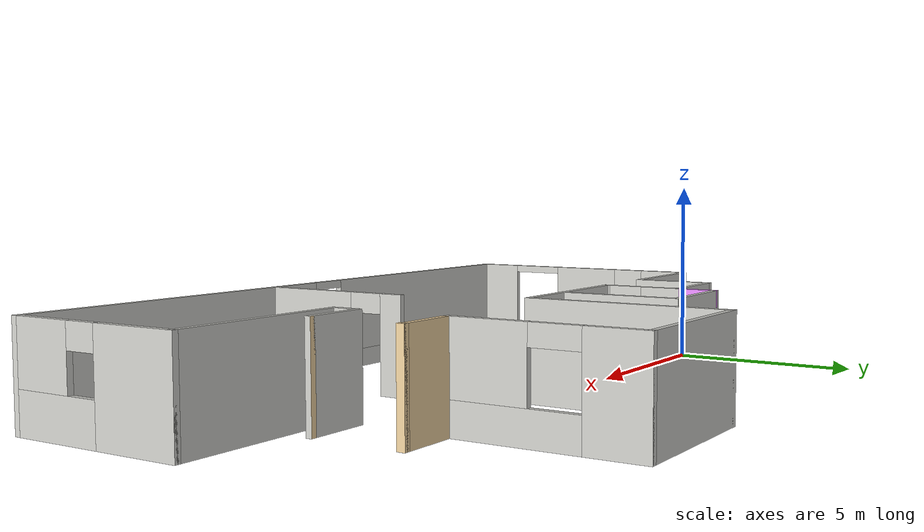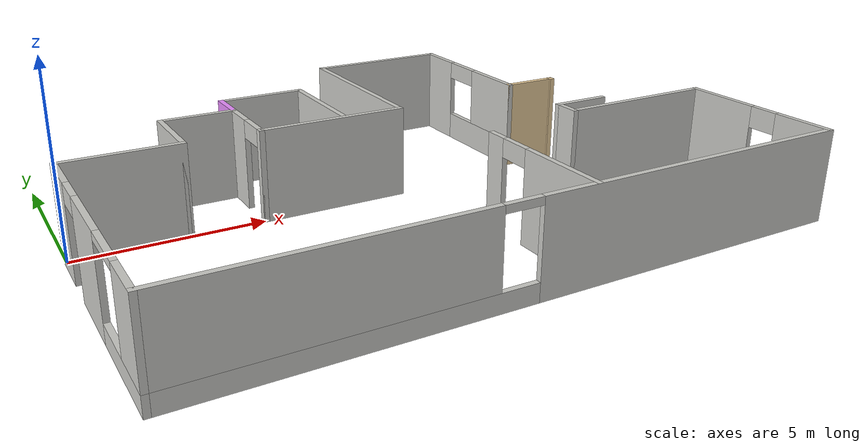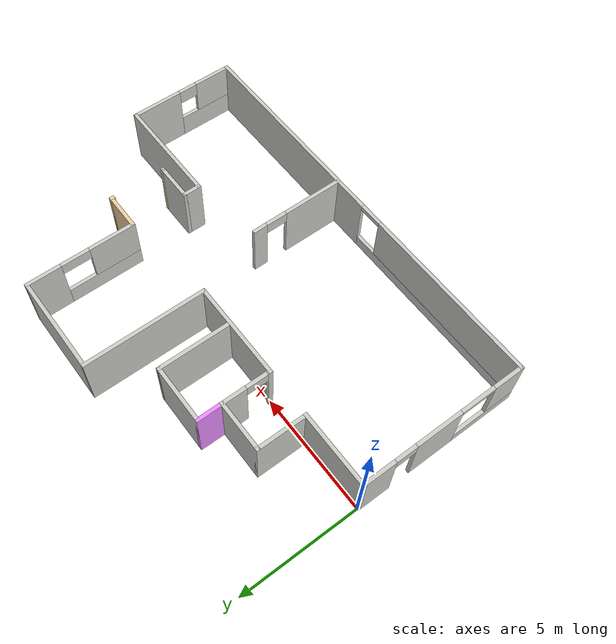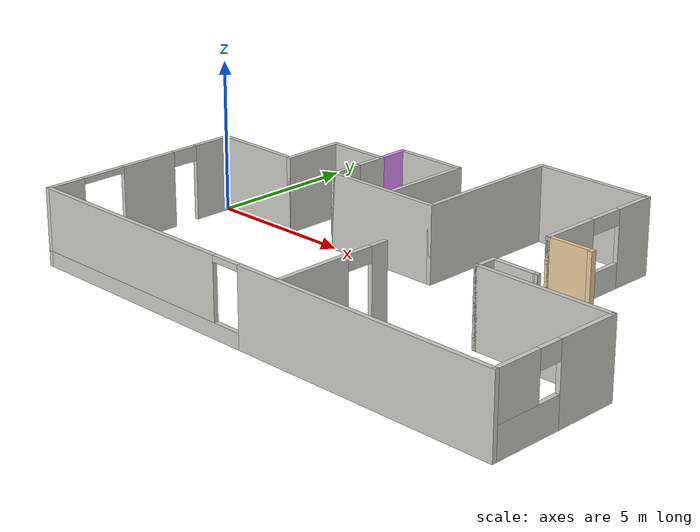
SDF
<?xml version='1.0'?>
<sdf version='1.6'>
  <model name='model'>
    <pose frame=''>8.75 -1 0 0 -0 0</pose>
    <link name='Wall_0'>
      <collision name='Wall_0_Collision'>
        <geometry>
          <box>
            <size>3.15 0.15 2.5</size>
          </box>
        </geometry>
        <pose frame=''>0 0 1.25 0 -0 0</pose>
      </collision>
      <visual name='Wall_0_Visual'>
        <pose frame=''>0 0 1.25 0 -0 0</pose>
        <geometry>
          <box>
            <size>3.15 0.15 2.5</size>
          </box>
        </geometry>
        <material>
          <script>
            <uri>file://media/materials/scripts/gazebo.material</uri>
            <name>Gazebo/CeilingTiled</name>
          </script>
          <ambient>0.921569 0.807843 0.615686 1</ambient>
        </material>
        <meta>
          <layer>0</layer>
        </meta>
      </visual>
      <pose frame=''>-7.25 1 0 0 -0 0</pose>
    </link>
    <link name='Wall_16'>
      <collision name='Wall_16_Collision'>
        <geometry>
          <box>
            <size>2.15 0.15 2.5</size>
          </box>
        </geometry>
        <pose frame=''>0 0 1.25 0 -0 0</pose>
      </collision>
      <visual name='Wall_16_Visual'>
        <pose frame=''>0 0 1.25 0 -0 0</pose>
        <geometry>
          <box>
            <size>2.15 0.15 2.5</size>
          </box>
        </geometry>
        <material>
          <script>
            <uri>file://media/materials/scripts/gazebo.material</uri>
            <name>Gazebo/CeilingTiled</name>
          </script>
          <ambient>0.921569 0.807843 0.615686 1</ambient>
        </material>
        <meta>
          <layer>0</layer>
        </meta>
      </visual>
      <pose frame=''>-5.75 2 0 0 -0 1.5708</pose>
    </link>
    <link name='Wall_18'>
      <collision name='Wall_18_Collision'>
        <geometry>
          <box>
            <size>2.15 0.15 2.5</size>
          </box>
        </geometry>
        <pose frame=''>0 0 1.25 0 -0 0</pose>
      </collision>
      <visual name='Wall_18_Visual'>
        <pose frame=''>0 0 1.25 0 -0 0</pose>
        <geometry>
          <box>
            <size>2.15 0.15 2.5</size>
          </box>
        </geometry>
        <material>
          <script>
            <uri>file://media/materials/scripts/gazebo.material</uri>
            <name>Gazebo/CeilingTiled</name>
          </script>
          <ambient>0.921569 0.807843 0.615686 1</ambient>
        </material>
        <meta>
          <layer>0</layer>
        </meta>
      </visual>
      <pose frame=''>-4.75 3 0 0 -0 0</pose>
    </link>
    <link name='Wall_20'>
      <pose frame=''>-3.75 2 0 0 0 -1.5708</pose>
      <visual name='Wall_20_Visual_0'>
        <pose frame=''>-0.547542 0 1.25 0 -0 0</pose>
        <geometry>
          <box>
            <size>1.05492 0.15 2.5</size>
          </box>
        </geometry>
        <material>
          <script>
            <uri>file://media/materials/scripts/gazebo.material</uri>
            <name>Gazebo/CeilingTiled</name>
          </script>
          <ambient>0.921569 0.807843 0.615686 1</ambient>
        </material>
        <meta>
          <layer>0</layer>
        </meta>
      </visual>
      <collision name='Wall_20_Collision_0'>
        <geometry>
          <box>
            <size>1.05492 0.15 2.5</size>
          </box>
        </geometry>
        <pose frame=''>-0.547542 0 1.25 0 -0 0</pose>
      </collision>
      <visual name='Wall_20_Visual_1'>
        <pose frame=''>0.977458 0 1.25 0 -0 0</pose>
        <geometry>
          <box>
            <size>0.195085 0.15 2.5</size>
          </box>
        </geometry>
        <material>
          <script>
            <uri>file://media/materials/scripts/gazebo.material</uri>
            <name>Gazebo/CeilingTiled</name>
          </script>
          <ambient>0.921569 0.807843 0.615686 1</ambient>
        </material>
        <meta>
          <layer>0</layer>
        </meta>
      </visual>
      <collision name='Wall_20_Collision_1'>
        <geometry>
          <box>
            <size>0.195085 0.15 2.5</size>
          </box>
        </geometry>
        <pose frame=''>0.977458 0 1.25 0 -0 0</pose>
      </collision>
      <visual name='Wall_20_Visual_2'>
        <pose frame=''>0.429915 0 2.25 0 -0 0</pose>
        <geometry>
          <box>
            <size>0.9 0.15 0.5</size>
          </box>
        </geometry>
        <material>
          <script>
            <uri>file://media/materials/scripts/gazebo.material</uri>
            <name>Gazebo/CeilingTiled</name>
          </script>
          <ambient>0.921569 0.807843 0.615686 1</ambient>
        </material>
        <meta>
          <layer>0</layer>
        </meta>
      </visual>
      <collision name='Wall_20_Collision_2'>
        <geometry>
          <box>
            <size>0.9 0.15 0.5</size>
          </box>
        </geometry>
        <pose frame=''>0.429915 0 2.25 0 -0 0</pose>
      </collision>
    </link>
    <link name='Wall_22'>
      <collision name='Wall_22_Collision'>
        <geometry>
          <box>
            <size>4.15 0.15 2.5</size>
          </box>
        </geometry>
        <pose frame=''>0 0 1.25 0 -0 0</pose>
      </collision>
      <visual name='Wall_22_Visual'>
        <pose frame=''>0 0 1.25 0 -0 0</pose>
        <geometry>
          <box>
            <size>4.15 0.15 2.5</size>
          </box>
        </geometry>
        <material>
          <script>
            <uri>file://media/materials/scripts/gazebo.material</uri>
            <name>Gazebo/CeilingTiled</name>
          </script>
          <ambient>0.921569 0.807843 0.615686 1</ambient>
        </material>
        <meta>
          <layer>0</layer>
        </meta>
      </visual>
      <pose frame=''>-1.75 1 0 0 -0 0</pose>
    </link>
    <link name='Wall_24'>
      <collision name='Wall_24_Collision'>
        <geometry>
          <box>
            <size>5.15 0.15 2.5</size>
          </box>
        </geometry>
        <pose frame=''>0 0 1.25 0 -0 0</pose>
      </collision>
      <visual name='Wall_24_Visual'>
        <pose frame=''>0 0 1.25 0 -0 0</pose>
        <geometry>
          <box>
            <size>5.15 0.15 2.5</size>
          </box>
        </geometry>
        <material>
          <script>
            <uri>file://media/materials/scripts/gazebo.material</uri>
            <name>Gazebo/CeilingTiled</name>
          </script>
          <ambient>0.921569 0.807843 0.615686 1</ambient>
        </material>
        <meta>
          <layer>0</layer>
        </meta>
      </visual>
      <pose frame=''>0.25 3.5 0 0 -0 1.5708</pose>
    </link>
    <link name='Wall_26'>
      <collision name='Wall_26_Collision'>
        <geometry>
          <box>
            <size>4.15 0.15 2.5</size>
          </box>
        </geometry>
        <pose frame=''>0 0 1.25 0 -0 0</pose>
      </collision>
      <visual name='Wall_26_Visual'>
        <pose frame=''>0 0 1.25 0 -0 0</pose>
        <geometry>
          <box>
            <size>4.15 0.15 2.5</size>
          </box>
        </geometry>
        <material>
          <script>
            <uri>file://media/materials/scripts/gazebo.material</uri>
            <name>Gazebo/CeilingTiled</name>
          </script>
          <ambient>0.921569 0.807843 0.615686 1</ambient>
        </material>
        <meta>
          <layer>0</layer>
        </meta>
      </visual>
      <pose frame=''>2.25 6 0 0 -0 0</pose>
    </link>
    <link name='Wall_28'>
      <pose frame=''>4.25 3.75 0 0 0 -1.5708</pose>
      <visual name='Wall_28_Visual_0'>
        <pose frame=''>-1.5875 0 1.25 0 -0 0</pose>
        <geometry>
          <box>
            <size>1.475 0.15 2.5</size>
          </box>
        </geometry>
        <material>
          <script>
            <uri>file://media/materials/scripts/gazebo.material</uri>
            <name>Gazebo/CeilingTiled</name>
          </script>
          <ambient>0.921569 0.807843 0.615686 1</ambient>
        </material>
        <meta>
          <layer>0</layer>
        </meta>
      </visual>
      <collision name='Wall_28_Collision_0'>
        <geometry>
          <box>
            <size>1.475 0.15 2.5</size>
          </box>
        </geometry>
        <pose frame=''>-1.5875 0 1.25 0 -0 0</pose>
      </collision>
      <visual name='Wall_28_Visual_1'>
        <pose frame=''>0.7375 0 0.4 0 -0 0</pose>
        <geometry>
          <box>
            <size>3.175 0.15 0.8</size>
          </box>
        </geometry>
        <material>
          <script>
            <uri>file://media/materials/scripts/gazebo.material</uri>
            <name>Gazebo/CeilingTiled</name>
          </script>
          <ambient>0.921569 0.807843 0.615686 1</ambient>
        </material>
        <meta>
          <layer>0</layer>
        </meta>
      </visual>
      <collision name='Wall_28_Collision_1'>
        <geometry>
          <box>
            <size>3.175 0.15 0.8</size>
          </box>
        </geometry>
        <pose frame=''>0.7375 0 0.4 0 -0 0</pose>
      </collision>
      <visual name='Wall_28_Visual_2'>
        <pose frame=''>1.3375 0 1.65 0 -0 0</pose>
        <geometry>
          <box>
            <size>1.975 0.15 1.7</size>
          </box>
        </geometry>
        <material>
          <script>
            <uri>file://media/materials/scripts/gazebo.material</uri>
            <name>Gazebo/CeilingTiled</name>
          </script>
          <ambient>0.921569 0.807843 0.615686 1</ambient>
        </material>
        <meta>
          <layer>0</layer>
        </meta>
      </visual>
      <collision name='Wall_28_Collision_2'>
        <geometry>
          <box>
            <size>1.975 0.15 1.7</size>
          </box>
        </geometry>
        <pose frame=''>1.3375 0 1.65 0 -0 0</pose>
      </collision>
      <visual name='Wall_28_Visual_3'>
        <pose frame=''>-0.25 0 2.25 0 -0 0</pose>
        <geometry>
          <box>
            <size>1.2 0.15 0.5</size>
          </box>
        </geometry>
        <material>
          <script>
            <uri>file://media/materials/scripts/gazebo.material</uri>
            <name>Gazebo/CeilingTiled</name>
          </script>
          <ambient>0.921569 0.807843 0.615686 1</ambient>
        </material>
        <meta>
          <layer>0</layer>
        </meta>
      </visual>
      <collision name='Wall_28_Collision_3'>
        <geometry>
          <box>
            <size>1.2 0.15 0.5</size>
          </box>
        </geometry>
        <pose frame=''>-0.25 0 2.25 0 -0 0</pose>
      </collision>
    </link>
    <link name='Wall_30'>
      <collision name='Wall_30_Collision'>
        <geometry>
          <box>
            <size>1.65 0.15 2.5</size>
          </box>
        </geometry>
        <pose frame=''>0 0 1.25 0 -0 0</pose>
      </collision>
      <visual name='Wall_30_Visual'>
        <pose frame=''>0 0 1.25 0 -0 0</pose>
        <geometry>
          <box>
            <size>1.65 0.15 2.5</size>
          </box>
        </geometry>
        <material>
          <script>
            <uri>file://media/materials/scripts/gazebo.material</uri>
            <name>Gazebo/Grey</name>
          </script>
          <ambient>0.921569 0.807843 0.615686 1</ambient>
        </material>
        <meta>
          <layer>0</layer>
        </meta>
      </visual>
      <pose frame=''>5 1.5 0 0 -0 0</pose>
    </link>
    <link name='Wall_31'>
      <pose frame=''>5.75 0.325 0 0 0 -1.5708</pose>
      <visual name='Wall_31_Visual_0'>
        <pose frame=''>-1.15 0 1.25 0 -0 0</pose>
        <geometry>
          <box>
            <size>0.2 0.15 2.5</size>
          </box>
        </geometry>
        <material>
          <script>
            <uri>file://media/materials/scripts/gazebo.material</uri>
            <name>Gazebo/Grey</name>
          </script>
          <ambient>0.921569 0.807843 0.615686 1</ambient>
        </material>
        <meta>
          <layer>0</layer>
        </meta>
      </visual>
      <collision name='Wall_31_Collision_0'>
        <geometry>
          <box>
            <size>0.2 0.15 2.5</size>
          </box>
        </geometry>
        <pose frame=''>-1.15 0 1.25 0 -0 0</pose>
      </collision>
      <visual name='Wall_31_Visual_1'>
        <pose frame=''>1.175 0 1.25 0 -0 0</pose>
        <geometry>
          <box>
            <size>0.15 0.15 2.5</size>
          </box>
        </geometry>
        <material>
          <script>
            <uri>file://media/materials/scripts/gazebo.material</uri>
            <name>Gazebo/Grey</name>
          </script>
          <ambient>0.921569 0.807843 0.615686 1</ambient>
        </material>
        <meta>
          <layer>0</layer>
        </meta>
      </visual>
      <collision name='Wall_31_Collision_1'>
        <geometry>
          <box>
            <size>0.15 0.15 2.5</size>
          </box>
        </geometry>
        <pose frame=''>1.175 0 1.25 0 -0 0</pose>
      </collision>
    </link>
    <link name='Wall_32'>
      <collision name='Wall_32_Collision'>
        <geometry>
          <box>
            <size>1.65 0.15 2.5</size>
          </box>
        </geometry>
        <pose frame=''>0 0 1.25 0 -0 0</pose>
      </collision>
      <visual name='Wall_32_Visual'>
        <pose frame=''>0 0 1.25 0 -0 0</pose>
        <geometry>
          <box>
            <size>1.65 0.15 2.5</size>
          </box>
        </geometry>
        <material>
          <script>
            <uri>file://media/materials/scripts/gazebo.material</uri>
            <name>Gazebo/CeilingTiled</name>
          </script>
          <ambient>0.921569 0.807843 0.615686 1</ambient>
        </material>
        <meta>
          <layer>0</layer>
        </meta>
      </visual>
      <pose frame=''>5 -0.85 0 0 -0 3.14159</pose>
    </link>
    <link name='Wall_34'>
      <collision name='Wall_34_Collision'>
        <geometry>
          <box>
            <size>0.8 0.15 2.5</size>
          </box>
        </geometry>
        <pose frame=''>0 0 1.25 0 -0 0</pose>
      </collision>
      <visual name='Wall_34_Visual'>
        <pose frame=''>0 0 1.25 0 -0 0</pose>
        <geometry>
          <box>
            <size>0.8 0.15 2.5</size>
          </box>
        </geometry>
        <material>
          <script>
            <uri>file://media/materials/scripts/gazebo.material</uri>
            <name>Gazebo/CeilingTiled</name>
          </script>
          <ambient>0.921569 0.807843 0.615686 1</ambient>
        </material>
        <meta>
          <layer>0</layer>
        </meta>
      </visual>
      <pose frame=''>4.25 -1.175 0 0 0 -1.5708</pose>
    </link>
    <link name='Wall_36'>
      <collision name='Wall_36_Collision'>
        <geometry>
          <box>
            <size>4.65 0.15 2.5</size>
          </box>
        </geometry>
        <pose frame=''>0 0 1.25 0 -0 0</pose>
      </collision>
      <visual name='Wall_36_Visual'>
        <pose frame=''>0 0 1.25 0 -0 0</pose>
        <geometry>
          <box>
            <size>4.65 0.15 2.5</size>
          </box>
        </geometry>
        <material>
          <script>
            <uri>file://media/materials/scripts/gazebo.material</uri>
            <name>Gazebo/CeilingTiled</name>
          </script>
          <ambient>0.921569 0.807843 0.615686 1</ambient>
        </material>
        <meta>
          <layer>0</layer>
        </meta>
      </visual>
      <pose frame=''>6.5 -1.5 0 0 -0 0</pose>
    </link>
    <link name='Wall_37'>
      <pose frame=''>8.75 -3.75 0 0 0 -1.5708</pose>
      <visual name='Wall_37_Visual_0'>
        <pose frame=''>-1.2375 0 1.25 0 -0 0</pose>
        <geometry>
          <box>
            <size>2.175 0.15 2.5</size>
          </box>
        </geometry>
        <material>
          <script>
            <uri>file://media/materials/scripts/gazebo.material</uri>
            <name>Gazebo/CeilingTiled</name>
          </script>
          <ambient>0.921569 0.807843 0.615686 1</ambient>
        </material>
        <meta>
          <layer>0</layer>
        </meta>
      </visual>
      <collision name='Wall_37_Collision_0'>
        <geometry>
          <box>
            <size>2.175 0.15 2.5</size>
          </box>
        </geometry>
        <pose frame=''>-1.2375 0 1.25 0 -0 0</pose>
      </collision>
      <visual name='Wall_37_Visual_1'>
        <pose frame=''>1.0875 0 0.5 0 -0 0</pose>
        <geometry>
          <box>
            <size>2.475 0.15 1</size>
          </box>
        </geometry>
        <material>
          <script>
            <uri>file://media/materials/scripts/gazebo.material</uri>
            <name>Gazebo/CeilingTiled</name>
          </script>
          <ambient>0.921569 0.807843 0.615686 1</ambient>
        </material>
        <meta>
          <layer>0</layer>
        </meta>
      </visual>
      <collision name='Wall_37_Collision_1'>
        <geometry>
          <box>
            <size>2.475 0.15 1</size>
          </box>
        </geometry>
        <pose frame=''>1.0875 0 0.5 0 -0 0</pose>
      </collision>
      <visual name='Wall_37_Visual_2'>
        <pose frame=''>1.4875 0 1.75 0 -0 0</pose>
        <geometry>
          <box>
            <size>1.675 0.15 1.5</size>
          </box>
        </geometry>
        <material>
          <script>
            <uri>file://media/materials/scripts/gazebo.material</uri>
            <name>Gazebo/CeilingTiled</name>
          </script>
          <ambient>0.921569 0.807843 0.615686 1</ambient>
        </material>
        <meta>
          <layer>0</layer>
        </meta>
      </visual>
      <collision name='Wall_37_Collision_2'>
        <geometry>
          <box>
            <size>1.675 0.15 1.5</size>
          </box>
        </geometry>
        <pose frame=''>1.4875 0 1.75 0 -0 0</pose>
      </collision>
      <visual name='Wall_37_Visual_3'>
        <pose frame=''>0.25 0 2.2 0 -0 0</pose>
        <geometry>
          <box>
            <size>0.8 0.15 0.6</size>
          </box>
        </geometry>
        <material>
          <script>
            <uri>file://media/materials/scripts/gazebo.material</uri>
            <name>Gazebo/CeilingTiled</name>
          </script>
          <ambient>0.921569 0.807843 0.615686 1</ambient>
        </material>
        <meta>
          <layer>0</layer>
        </meta>
      </visual>
      <collision name='Wall_37_Collision_3'>
        <geometry>
          <box>
            <size>0.8 0.15 0.6</size>
          </box>
        </geometry>
        <pose frame=''>0.25 0 2.2 0 -0 0</pose>
      </collision>
    </link>
    <link name='Wall_38'>
      <pose frame=''>0 -6 0 0 -0 3.14159</pose>
      <visual name='Wall_38_Visual_0'>
        <pose frame=''>-4.2875 0 1.25 0 -0 0</pose>
        <geometry>
          <box>
            <size>9.075 0.15 2.5</size>
          </box>
        </geometry>
        <material>
          <script>
            <uri>file://media/materials/scripts/gazebo.material</uri>
            <name>Gazebo/CeilingTiled</name>
          </script>
          <ambient>0.921569 0.807843 0.615686 1</ambient>
        </material>
        <meta>
          <layer>0</layer>
        </meta>
      </visual>
      <collision name='Wall_38_Collision_0'>
        <geometry>
          <box>
            <size>9.075 0.15 2.5</size>
          </box>
        </geometry>
        <pose frame=''>-4.2875 0 1.25 0 -0 0</pose>
      </collision>
      <visual name='Wall_38_Visual_1'>
        <pose frame=''>4.5375 0 0.25 0 -0 0</pose>
        <geometry>
          <box>
            <size>8.575 0.15 0.5</size>
          </box>
        </geometry>
        <material>
          <script>
            <uri>file://media/materials/scripts/gazebo.material</uri>
            <name>Gazebo/CeilingTiled</name>
          </script>
          <ambient>0.921569 0.807843 0.615686 1</ambient>
        </material>
        <meta>
          <layer>0</layer>
        </meta>
      </visual>
      <collision name='Wall_38_Collision_1'>
        <geometry>
          <box>
            <size>8.575 0.15 0.5</size>
          </box>
        </geometry>
        <pose frame=''>4.5375 0 0.25 0 -0 0</pose>
      </collision>
      <visual name='Wall_38_Visual_2'>
        <pose frame=''>5.0375 0 1.5 0 -0 0</pose>
        <geometry>
          <box>
            <size>7.575 0.15 2</size>
          </box>
        </geometry>
        <material>
          <script>
            <uri>file://media/materials/scripts/gazebo.material</uri>
            <name>Gazebo/CeilingTiled</name>
          </script>
          <ambient>0.921569 0.807843 0.615686 1</ambient>
        </material>
        <meta>
          <layer>0</layer>
        </meta>
      </visual>
      <collision name='Wall_38_Collision_2'>
        <geometry>
          <box>
            <size>7.575 0.15 2</size>
          </box>
        </geometry>
        <pose frame=''>5.0375 0 1.5 0 -0 0</pose>
      </collision>
      <visual name='Wall_38_Visual_3'>
        <pose frame=''>0.75 0 2.4 0 -0 0</pose>
        <geometry>
          <box>
            <size>1 0.15 0.2</size>
          </box>
        </geometry>
        <material>
          <script>
            <uri>file://media/materials/scripts/gazebo.material</uri>
            <name>Gazebo/CeilingTiled</name>
          </script>
          <ambient>0.921569 0.807843 0.615686 1</ambient>
        </material>
        <meta>
          <layer>0</layer>
        </meta>
      </visual>
      <collision name='Wall_38_Collision_3'>
        <geometry>
          <box>
            <size>1 0.15 0.2</size>
          </box>
        </geometry>
        <pose frame=''>0.75 0 2.4 0 -0 0</pose>
      </collision>
    </link>
    <link name='Wall_40'>
      <pose frame=''>-8.75 -2.5 0 0 0 -1.5708</pose>
      <visual name='Wall_40_Visual_0'>
        <pose frame=''>-2.8625 0 1.25 0 -0 0</pose>
        <geometry>
          <box>
            <size>1.425 0.15 2.5</size>
          </box>
        </geometry>
        <material>
          <script>
            <uri>file://media/materials/scripts/gazebo.material</uri>
            <name>Gazebo/CeilingTiled</name>
          </script>
          <ambient>0.921569 0.807843 0.615686 1</ambient>
        </material>
        <meta>
          <layer>0</layer>
        </meta>
      </visual>
      <collision name='Wall_40_Collision_0'>
        <geometry>
          <box>
            <size>1.425 0.15 2.5</size>
          </box>
        </geometry>
        <pose frame=''>-2.8625 0 1.25 0 -0 0</pose>
      </collision>
      <visual name='Wall_40_Visual_1'>
        <pose frame=''>-0.25 0 1.25 0 -0 0</pose>
        <geometry>
          <box>
            <size>2 0.15 2.5</size>
          </box>
        </geometry>
        <material>
          <script>
            <uri>file://media/materials/scripts/gazebo.material</uri>
            <name>Gazebo/CeilingTiled</name>
          </script>
          <ambient>0.921569 0.807843 0.615686 1</ambient>
        </material>
        <meta>
          <layer>0</layer>
        </meta>
      </visual>
      <collision name='Wall_40_Collision_1'>
        <geometry>
          <box>
            <size>2 0.15 2.5</size>
          </box>
        </geometry>
        <pose frame=''>-0.25 0 1.25 0 -0 0</pose>
      </collision>
      <visual name='Wall_40_Visual_2'>
        <pose frame=''>2.1625 0 0.25 0 -0 0</pose>
        <geometry>
          <box>
            <size>2.825 0.15 0.5</size>
          </box>
        </geometry>
        <material>
          <script>
            <uri>file://media/materials/scripts/gazebo.material</uri>
            <name>Gazebo/CeilingTiled</name>
          </script>
          <ambient>0.921569 0.807843 0.615686 1</ambient>
        </material>
        <meta>
          <layer>0</layer>
        </meta>
      </visual>
      <collision name='Wall_40_Collision_2'>
        <geometry>
          <box>
            <size>2.825 0.15 0.5</size>
          </box>
        </geometry>
        <pose frame=''>2.1625 0 0.25 0 -0 0</pose>
      </collision>
      <visual name='Wall_40_Visual_3'>
        <pose frame=''>2.9125 0 1.5 0 -0 0</pose>
        <geometry>
          <box>
            <size>1.325 0.15 2</size>
          </box>
        </geometry>
        <material>
          <script>
            <uri>file://media/materials/scripts/gazebo.material</uri>
            <name>Gazebo/CeilingTiled</name>
          </script>
          <ambient>0.921569 0.807843 0.615686 1</ambient>
        </material>
        <meta>
          <layer>0</layer>
        </meta>
      </visual>
      <collision name='Wall_40_Collision_3'>
        <geometry>
          <box>
            <size>1.325 0.15 2</size>
          </box>
        </geometry>
        <pose frame=''>2.9125 0 1.5 0 -0 0</pose>
      </collision>
      <visual name='Wall_40_Visual_4'>
        <pose frame=''>-1.7 0 2.25 0 -0 0</pose>
        <geometry>
          <box>
            <size>0.9 0.15 0.5</size>
          </box>
        </geometry>
        <material>
          <script>
            <uri>file://media/materials/scripts/gazebo.material</uri>
            <name>Gazebo/CeilingTiled</name>
          </script>
          <ambient>0.921569 0.807843 0.615686 1</ambient>
        </material>
        <meta>
          <layer>0</layer>
        </meta>
      </visual>
      <collision name='Wall_40_Collision_4'>
        <geometry>
          <box>
            <size>0.9 0.15 0.5</size>
          </box>
        </geometry>
        <pose frame=''>-1.7 0 2.25 0 -0 0</pose>
      </collision>
      <visual name='Wall_40_Visual_5'>
        <pose frame=''>1.5 0 2.4 0 -0 0</pose>
        <geometry>
          <box>
            <size>1.5 0.15 0.2</size>
          </box>
        </geometry>
        <material>
          <script>
            <uri>file://media/materials/scripts/gazebo.material</uri>
            <name>Gazebo/CeilingTiled</name>
          </script>
          <ambient>0.921569 0.807843 0.615686 1</ambient>
        </material>
        <meta>
          <layer>0</layer>
        </meta>
      </visual>
      <collision name='Wall_40_Collision_5'>
        <geometry>
          <box>
            <size>1.5 0.15 0.2</size>
          </box>
        </geometry>
        <pose frame=''>1.5 0 2.4 0 -0 0</pose>
      </collision>
    </link>
    <link name='Wall_42'>
      <pose frame=''>1.25 -4 0 0 -0 1.5708</pose>
      <visual name='Wall_42_Visual_0'>
        <pose frame=''>-0.758578 0 1.25 0 -0 0</pose>
        <geometry>
          <box>
            <size>2.63284 0.15 2.5</size>
          </box>
        </geometry>
        <material>
          <script>
            <uri>file://media/materials/scripts/gazebo.material</uri>
            <name>Gazebo/CeilingTiled</name>
          </script>
          <ambient>0.921569 0.807843 0.615686 1</ambient>
        </material>
        <meta>
          <layer>0</layer>
        </meta>
      </visual>
      <collision name='Wall_42_Collision_0'>
        <geometry>
          <box>
            <size>2.63284 0.15 2.5</size>
          </box>
        </geometry>
        <pose frame=''>-0.758578 0 1.25 0 -0 0</pose>
      </collision>
      <visual name='Wall_42_Visual_1'>
        <pose frame=''>1.76642 0 1.25 0 -0 0</pose>
        <geometry>
          <box>
            <size>0.617156 0.15 2.5</size>
          </box>
        </geometry>
        <material>
          <script>
            <uri>file://media/materials/scripts/gazebo.material</uri>
            <name>Gazebo/CeilingTiled</name>
          </script>
          <ambient>0.921569 0.807843 0.615686 1</ambient>
        </material>
        <meta>
          <layer>0</layer>
        </meta>
      </visual>
      <collision name='Wall_42_Collision_1'>
        <geometry>
          <box>
            <size>0.617156 0.15 2.5</size>
          </box>
        </geometry>
        <pose frame=''>1.76642 0 1.25 0 -0 0</pose>
      </collision>
      <visual name='Wall_42_Visual_2'>
        <pose frame=''>1.00784 0 2.25 0 -0 0</pose>
        <geometry>
          <box>
            <size>0.9 0.15 0.5</size>
          </box>
        </geometry>
        <material>
          <script>
            <uri>file://media/materials/scripts/gazebo.material</uri>
            <name>Gazebo/CeilingTiled</name>
          </script>
          <ambient>0.921569 0.807843 0.615686 1</ambient>
        </material>
        <meta>
          <layer>0</layer>
        </meta>
      </visual>
      <collision name='Wall_42_Collision_2'>
        <geometry>
          <box>
            <size>0.9 0.15 0.5</size>
          </box>
        </geometry>
        <pose frame=''>1.00784 0 2.25 0 -0 0</pose>
      </collision>
    </link>
    <link name='Wall_47'>
      <collision name='Wall_47_Collision'>
        <geometry>
          <box>
            <size>3 0.15 2.5</size>
          </box>
        </geometry>
        <pose frame=''>0 0 1.25 0 -0 0</pose>
      </collision>
      <visual name='Wall_47_Visual'>
        <pose frame=''>0 0 1.25 0 -0 0</pose>
        <geometry>
          <box>
            <size>3 0.15 2.5</size>
          </box>
        </geometry>
        <material>
          <script>
            <uri>file://media/materials/scripts/gazebo.material</uri>
            <name>Gazebo/CeilingTiled</name>
          </script>
          <ambient>0.913725 0.556863 1 1</ambient>
        </material>
        <meta>
          <layer>0</layer>
        </meta>
      </visual>
      <pose frame=''>-1.4 2.575 0 0 0 -1.5708</pose>
    </link>
    <link name='Wall_49'>
      <collision name='Wall_49_Collision'>
        <geometry>
          <box>
            <size>1.15 0.15 2.5</size>
          </box>
        </geometry>
        <pose frame=''>0 0 1.25 0 -0 0</pose>
      </collision>
      <visual name='Wall_49_Visual'>
        <pose frame=''>0 0 1.25 0 -0 0</pose>
        <geometry>
          <box>
            <size>1.15 0.15 2.5</size>
          </box>
        </geometry>
        <material>
          <script>
            <uri>file://media/materials/scripts/gazebo.material</uri>
            <name>Gazebo/Grey</name>
          </script>
          <ambient>0.913725 0.556863 1 1</ambient>
        </material>
        <meta>
          <layer>0</layer>
        </meta>
      </visual>
      <pose frame=''>-3.75 3.5 0 0 -0 1.5708</pose>
    </link>
    <link name='Wall_50'>
      <collision name='Wall_50_Collision'>
        <geometry>
          <box>
            <size>2.5 0.15 2.5</size>
          </box>
        </geometry>
        <pose frame=''>0 0 1.25 0 -0 0</pose>
      </collision>
      <visual name='Wall_50_Visual'>
        <pose frame=''>0 0 1.25 0 -0 0</pose>
        <geometry>
          <box>
            <size>2.5 0.15 2.5</size>
          </box>
        </geometry>
        <material>
          <script>
            <uri>file://media/materials/scripts/gazebo.material</uri>
            <name>Gazebo/CeilingTiled</name>
          </script>
          <ambient>0.913725 0.556863 1 1</ambient>
        </material>
        <meta>
          <layer>0</layer>
        </meta>
      </visual>
      <pose frame=''>-2.575 4 0 0 -0 0</pose>
    </link>
    <static>1</static>
  </model>
</sdf>
